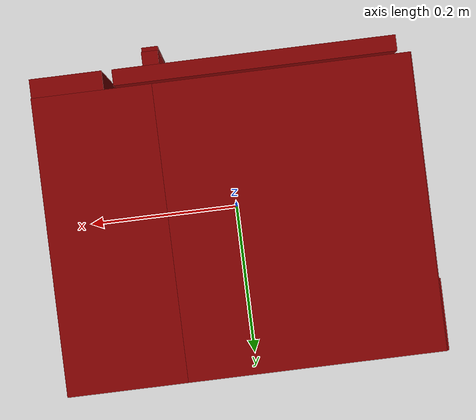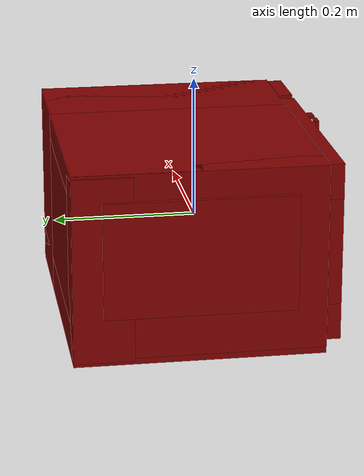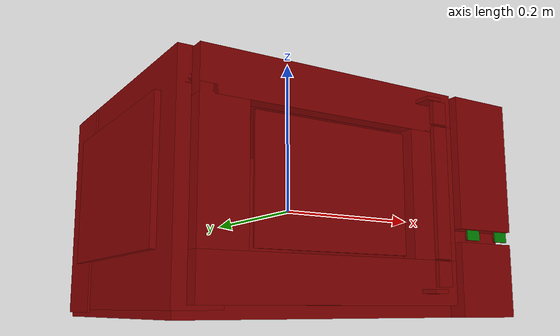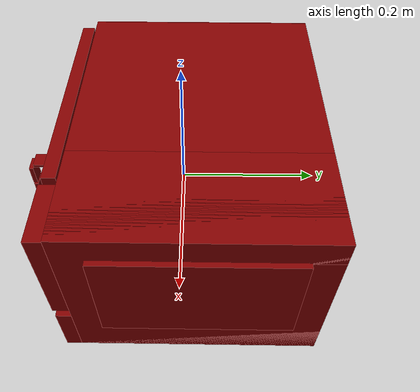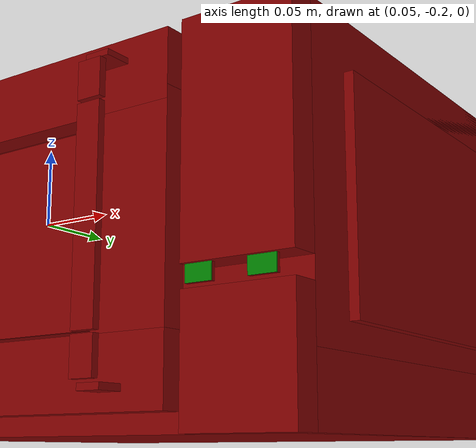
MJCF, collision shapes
<mujoco model="model">
  <compiler angle="radian"/>
  <asset>
    <mesh file="visuals/door.obj" name="door_vis"/>
    <mesh file="visuals/door_Clear.obj" name="door_Clear_vis"/>
    <mesh file="visuals/Body001.obj" name="Body001_vis"/>
    <mesh file="visuals/Button001.obj" name="Button001_vis"/>
    <mesh file="visuals/Button002.obj" name="Button002_vis"/>
    <mesh file="visuals/Disc001.obj" name="Disc001_vis"/>
    <texture file="visuals/T_BC001.png" name="Body001_material" type="2d"/>
    <material name="Body001_material" rgba="1 1 1 1.0" texture="Body001_material" shininess="0.2512328028678894" specular="0.3103448502657381"/>
    <texture file="visuals/T_BC001.png" name="door_material" type="2d"/>
    <material name="door_material" rgba="1 1 1 1.0" texture="door_material" shininess="0.2512328028678894" specular="0.3103448502657381"/>
    <texture file="visuals/T_BC001.png" name="door_Clear_material" type="2d"/>
    <material name="door_Clear_material" rgba="1 1 1 0.7292817831039429" texture="door_Clear_material" shininess="0.2512328028678894" specular="0.3103448502657381"/>
    <texture file="visuals/T_BC001.png" name="Button001_material" type="2d"/>
    <material name="Button001_material" rgba="1 1 1 1.0" texture="Button001_material" shininess="0.2512328028678894" specular="0.3103448502657381"/>
    <texture file="visuals/T_BC001.png" name="Button002_material" type="2d"/>
    <material name="Button002_material" rgba="1 1 1 1.0" texture="Button002_material" shininess="0.2512328028678894" specular="0.3103448502657381"/>
    <texture file="visuals/T_BC001.png" name="Disc001_material" type="2d"/>
    <material name="Disc001_material" rgba="1 1 1 1.0" texture="Disc001_material" shininess="0.2512328028678894" specular="0.3103448502657381"/>
  </asset>
  <default>
    <default class="visual">
      <geom conaffinity="0" contype="0" group="1" type="mesh"/>
    </default>
    <default class="collision">
      <geom group="0" rgba="0.5 0 0 0.5"/>
    </default>
    <default class="spawn">
      <geom group="0" rgba="1 1 1 0.5" contype="0" conaffinity="0"/>
      <site group="0" rgba="1 1 1 0.5"/>
    </default>
    <default class="region">
      <geom group="1" conaffinity="0" contype="0" rgba="0 1 0 0"/>
    </default>
  </default>
  <worldbody>
    <body>
      <body name="object">
        <geom class="collision" type="box" pos="0.19894351065158844 -0.17302121222019196 -0.0379185676574707" size="0.010139121674001217 0.0004990047309547663 0.005988104268908501" quat="1.0 0.0 0.0 0.0" name="start_button" rgba="0.0 0.5 0 0.5"/>
        <geom class="collision" type="box" pos="-0.042258597910404205 -0.020897293463349342 -0.07171766459941864" size="0.10358398407697678 0.10358398407697678 0.0022657890804111958" quat="1.0 0.0 0.0 0.0" name="tray" rgba="0 1 0 0.5"/>
        <geom class="collision" type="box" pos="0.15249603986740112 -0.17302121222019196 -0.0379185676574707" size="0.010139130987226963 0.0004990053130313754 0.0059881084598600864" quat="1.0 0.0 0.0 0.0" name="stop_button" rgba="0.0 0.5 0 0.5"/>
        <geom mesh="Body001_vis" type="mesh" solimp="0.998 0.998 0.001" solref="0.001 1" density="100" friction="0.95 0.3 0.1" class="visual" material="Body001_material"/>
        <geom class="collision" type="box" pos="-0.1924365758895874 0.024721994996070862 0.004663247615098953" size="0.027500146999955177 0.17293795943260193 0.1296967715024948" quat="1.0 0.0 0.0 0.0"/>
        <geom class="collision" type="box" pos="0.14987464249134064 0.024722008034586906 9.011267684400082e-05" size="0.06985177099704742 0.17293795943260193 0.13426993787288666" quat="1.0 0.0 0.0 0.0"/>
        <geom class="collision" type="box" pos="0.00039651989936828613 0.024721994996070862 0.11448781192302704" size="0.21932989358901978 0.17293795943260193 0.01987224631011486" quat="1.0 0.0 0.0 0.0"/>
        <geom class="collision" type="box" pos="0.00039651989936828613 0.024721994996070862 -0.10958681255578995" size="0.21932989358901978 0.17293795943260193 0.024593036621809006" quat="1.0 0.0 0.0 0.0"/>
        <geom class="collision" type="box" pos="-0.02508842572569847 0.1561148762702942 0.0012486428022384644" size="0.19756445288658142 0.041545066982507706 0.1295577734708786" quat="1.0 0.0 0.0 0.0"/>
        <geom class="collision" type="box" pos="0.17776289582252502 0.007427148055285215 0.05093991011381149" size="0.04196348041296005 0.17806245386600494 0.08130887150764465" quat="1.0 0.0 0.0 0.0"/>
        <geom class="collision" type="box" pos="0.17776289582252502 0.007807811256498098 -0.09019926190376282" size="0.04196348041296005 0.1776817888021469 0.043980568647384644" quat="1.0 0.0 0.0 0.0"/>
        <geom class="collision" type="box" pos="0.1847463995218277 0.024713467806577682 0.01545596495270729" size="0.04218415170907974 0.1320469230413437 0.08130887150764465" quat="1.0 0.0 0.0 0.0"/>
        <geom class="collision" type="box" pos="-0.19891825318336487 0.024713467806577682 0.01545596495270729" size="0.02801254391670227 0.1320469230413437 0.08130887150764465" quat="1.0 0.0 0.0 0.0"/>
        <body name="door">
          <joint axis="0.0 0.0 1.0" pos="-0.20893633365631104 -0.15929502248764038 0.004543852526694536" limited="true" name="microjoint" range="-1.5707963267948966 0.0" type="hinge" damping="1" frictionloss="1" armature=".01" stiffness="0.05"/>
          <geom mesh="door_vis" type="mesh" solimp="0.998 0.998 0.001" solref="0.001 1" density="100" friction="0.95 0.3 0.1" class="visual" material="door_material"/>
          <geom class="collision" type="box" pos="-0.04065939411520958 -0.1613994687795639 0.10594549030065536" size="0.16492308676242828 0.009346925653517246 0.02486092783510685" quat="1.0 0.0 0.0 0.0"/>
          <geom class="collision" type="box" pos="-0.04065939411520958 -0.1613994687795639 -0.09462739527225494" size="0.16492308676242828 0.009346925653517246 0.025598498061299324" quat="1.0 0.0 0.0 0.0"/>
          <geom class="collision" type="box" pos="0.09289035201072693 -0.1613994687795639 0.010883343406021595" size="0.031429581344127655 0.009346925653517246 0.07991226017475128" quat="1.0 0.0 0.0 0.0"/>
          <geom class="collision" type="box" pos="-0.17783287167549133 -0.1613994687795639 0.010883343406021595" size="0.027687348425388336 0.009346925653517246 0.07991226017475128" quat="1.0 0.0 0.0 0.0"/>
          <geom class="collision" type="box" pos="0.07998055964708328 -0.19510258734226227 -0.08640357851982117" size="0.00974123552441597 0.002720192074775696 0.014029380865395069" quat="1.0 0.0 0.0 0.0"/>
          <geom class="collision" type="box" pos="0.07998053729534149 -0.19510391354560852 0.09565013647079468" size="0.009741238318383694 0.0027201934717595577 0.013483738526701927" quat="1.0 0.0 0.0 0.0"/>
          <geom class="collision" type="box" pos="0.07998049259185791 -0.17922921478748322 0.11474370211362839" size="0.00974125973880291 0.011544909328222275 0.002134640933945775" quat="1.0 0.0 0.0 0.0"/>
          <geom class="collision" type="box" pos="0.08022388070821762 -0.17948026955127716 -0.10487201064825058" size="0.009549888782203197 0.011796058155596256 0.002477484755218029" quat="1.0 0.0 0.0 0.0"/>
          <geom class="collision" type="box" pos="0.07998054474592209 -0.19510258734226227 0.004685581661760807" size="0.009741299785673618 0.0027202193159610033 0.07508749514818192" quat="1.0 0.0 0.0 0.0" name="door_handle"/>
          <body name="door_Clear">
            <geom mesh="door_Clear_vis" type="mesh" solimp="0.998 0.998 0.001" solref="0.001 1" density="100" friction="0.95 0.3 0.1" class="visual" material="door_Clear_material"/>
            <geom class="collision" type="box" pos="-0.04285956919193268 -0.1618061065673828 0.004975791554898024" size="0.09780470281839371 0.0011053797788918018 0.07022283226251602" quat="1.0 0.0 0.0 0.0"/>
          </body>
        </body>
        <body name="Button001">
          <joint axis="0.0 1.0 0.0" pos="0.19894352555274963 -0.17147225141525269 -0.0379185676574707" limited="true" name="Button001_joint" range="0.0 0.001" type="slide" damping="1" frictionloss="1" armature=".01" stiffness="0.05"/>
          <geom mesh="Button001_vis" type="mesh" solimp="0.998 0.998 0.001" solref="0.001 1" density="100" friction="0.95 0.3 0.1" class="visual" material="Button001_material"/>
          <geom class="collision" type="box" pos="0.19894351065158844 -0.1711636334657669 -0.0379185676574707" size="0.010139117017388344 0.0010977346682921052 0.005988101940602064" quat="1.0 0.0 0.0 0.0"/>
        </body>
        <body name="Button002">
          <joint axis="0.0 1.0 0.0" pos="0.15252897143363953 -0.17147225141525269 -0.0379185676574707" limited="true" name="Button002_joint" range="0.0 0.001" type="slide" damping="1" frictionloss="1" armature=".01" stiffness="0.05"/>
          <geom mesh="Button002_vis" type="mesh" solimp="0.998 0.998 0.001" solref="0.001 1" density="100" friction="0.95 0.3 0.1" class="visual" material="Button002_material"/>
          <geom class="collision" type="box" pos="0.15248335897922516 -0.17110323905944824 -0.03794433921575546" size="0.010139134712517262 0.00109773688018322 0.005988110788166523" quat="1.0 0.0 0.0 0.0"/>
        </body>
        <body name="Disc001">
          <joint axis="0.0 0.0 1.0" pos="-0.04219510778784752 -0.02068471349775791 -0.07565426826477051" limited="false" name="Disc001_joint" range="0 360" type="hinge" damping="1" frictionloss="1" armature=".01" stiffness="0.05"/>
          <geom mesh="Disc001_vis" type="mesh" solimp="0.998 0.998 0.001" solref="0.001 1" density="100" friction="0.95 0.3 0.1" class="visual" material="Disc001_material"/>
          <geom class="collision" type="cylinder" pos="-0.042233776301145554 -0.02131742797791958 -0.07978764176368713" size="0.1052851676940918 0.00444889348000288" quat="1.0 0.0 0.0 0.0"/>
        </body>
        <geom class="region" name="reg_main" type="box" pos="0.0 0.013541840016841888 1.862645149230957e-08" size="0.22693079710006714 0.1841180920600891 0.13436001539230347"/>
        <geom class="region" name="reg_int" type="box" pos="-0.042050234973430634 -0.01608358696103096 0.004381097853183746" size="0.12120217829942703 0.12967794761061668 0.08912315219640732"/>
      </body>
    </body>
  </worldbody>
  <actuator>
    <motor name="microjoint_actuator" joint="microjoint" gear="3"/>
    <motor name="Button001_joint_actuator" joint="Button001_joint" gear="0.2"/>
    <motor name="Button002_joint_actuator" joint="Button002_joint" gear="0.2"/>
    <motor name="Disc001_joint_actuator" joint="Disc001_joint" gear="10"/>
  </actuator>
</mujoco>
